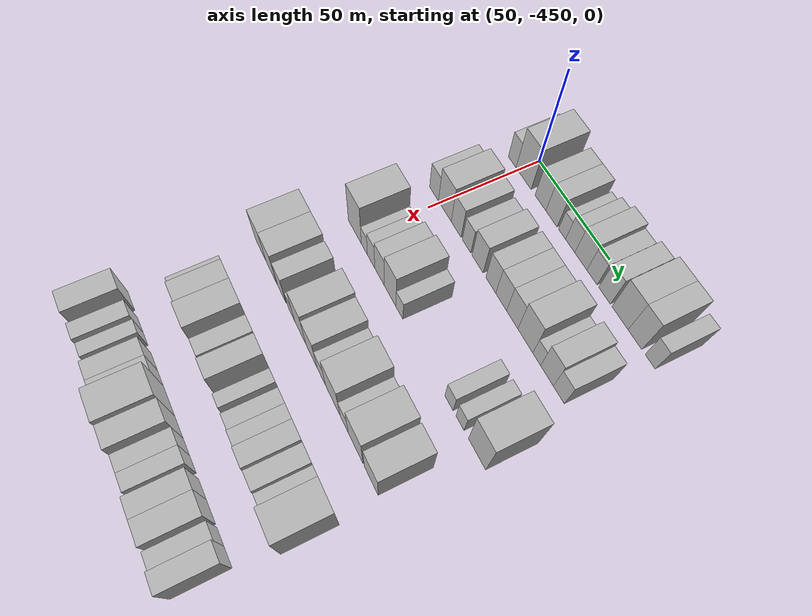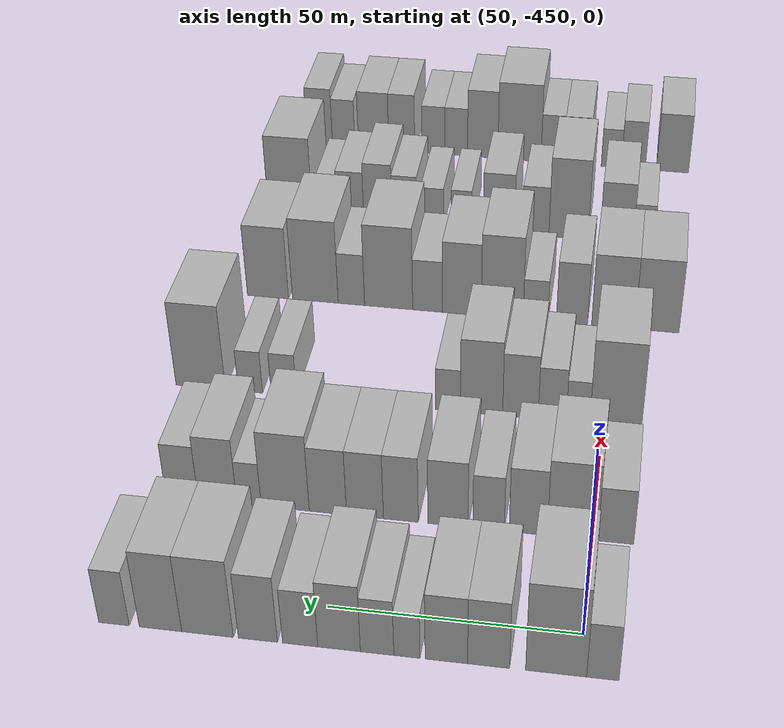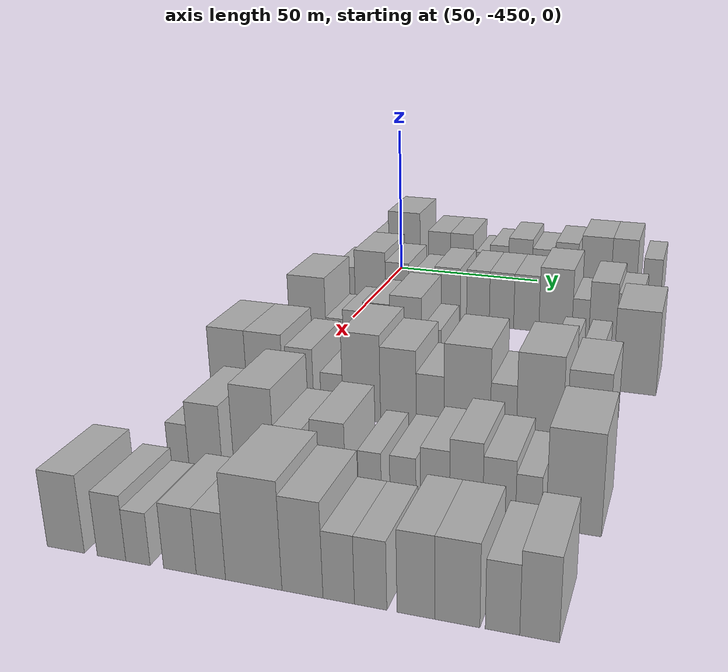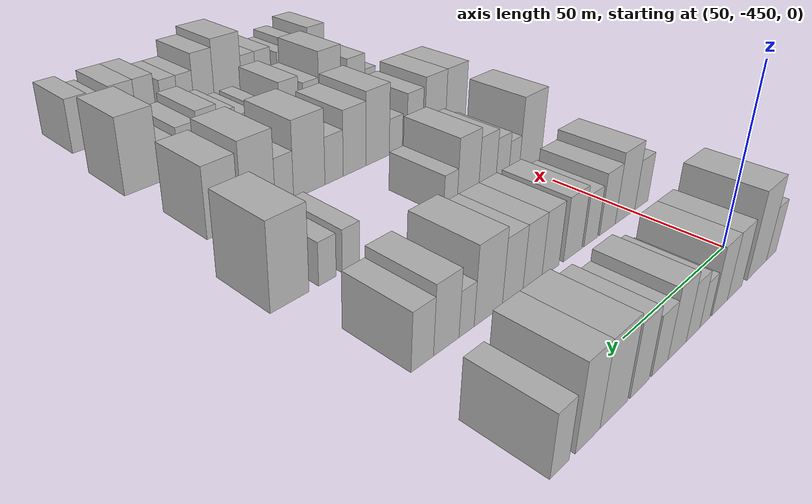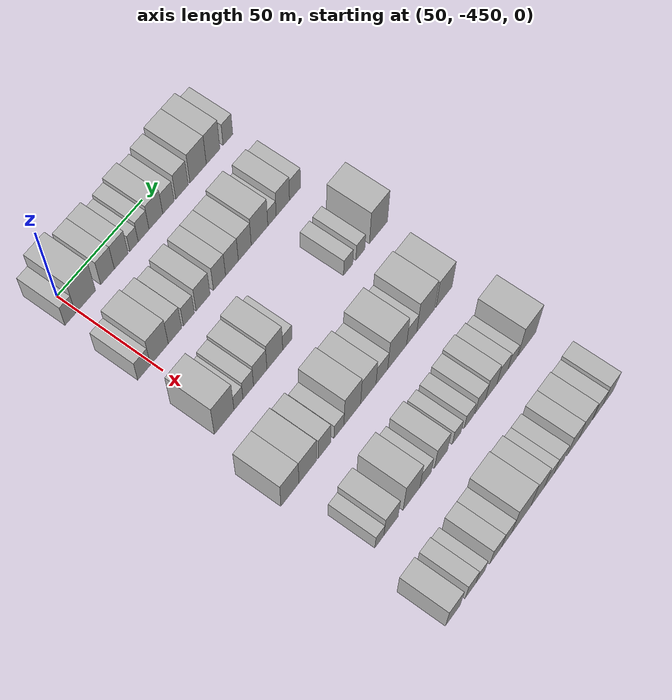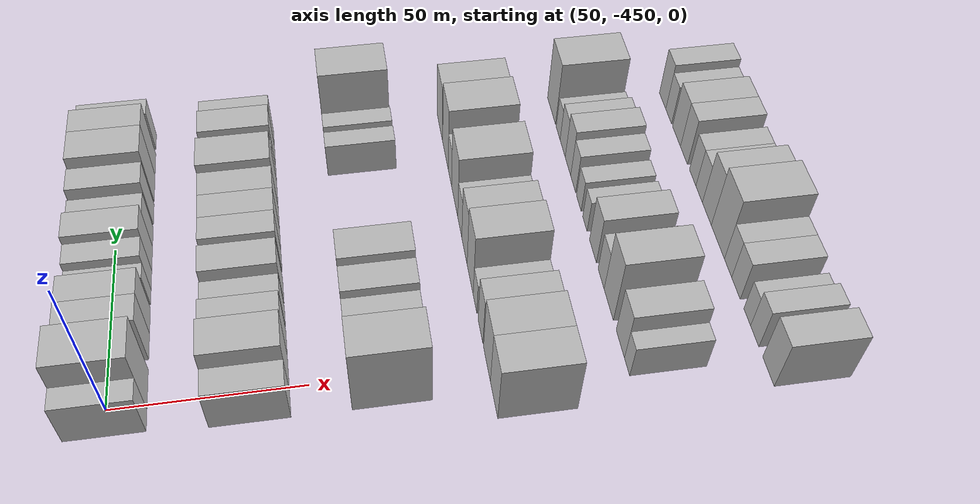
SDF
<sdf version="1.6">
 <world name="default">
  <model name="building_10">
   <static>1</static>
   <pose>50.0000 -454.3482 0 0.000000 0.000000 0.000000</pose>
   <link name="link">
    <pose>0 0 7.50 0 0 0</pose>
    <collision name="collision"><geometry><box><size>20.0000 6.0441 15.0000</size></box></geometry></collision>
    <visual name="visual">
     <cast_shadows>0</cast_shadows>
     <geometry><box><size>20.0000 6.0441 15.0000</size></box></geometry>
     <material>
      <script>
       <uri>model://HANNAS_wall/materials/scripts</uri>
       <uri>model://HANNAS_wall/materials/textures</uri>
       <name>vrc/HANNAS_wall</name>
      </script>
     </material>
    </visual>
   </link>
  </model>
  <model name="building_11">
   <static>1</static>
   <pose>50.0000 -445.5885 0 0.000000 0.000000 0.000000</pose>
   <link name="link">
    <pose>0 0 12.00 0 0 0</pose>
    <collision name="collision"><geometry><box><size>20.0000 11.4752 24.0000</size></box></geometry></collision>
    <visual name="visual">
     <cast_shadows>0</cast_shadows>
     <geometry><box><size>20.0000 11.4752 24.0000</size></box></geometry>
     <material>
      <script>
       <uri>model://HANNAS_wall/materials/scripts</uri>
       <uri>model://HANNAS_wall/materials/textures</uri>
       <name>vrc/HANNAS_wall</name>
      </script>
     </material>
    </visual>
   </link>
  </model>
  <model name="building_12">
   <static>1</static>
   <pose>50.0000 -432.8625 0 0.000000 0.000000 0.000000</pose>
   <link name="link">
    <pose>0 0 9.00 0 0 0</pose>
    <collision name="collision"><geometry><box><size>20.0000 7.9769 18.0000</size></box></geometry></collision>
    <visual name="visual">
     <cast_shadows>0</cast_shadows>
     <geometry><box><size>20.0000 7.9769 18.0000</size></box></geometry>
     <material>
      <script>
       <uri>model://HANNAS_wall/materials/scripts</uri>
       <uri>model://HANNAS_wall/materials/textures</uri>
       <name>vrc/HANNAS_wall</name>
      </script>
     </material>
    </visual>
   </link>
  </model>
  <model name="building_13">
   <static>1</static>
   <pose>50.0000 -424.8366 0 0.000000 0.000000 0.000000</pose>
   <link name="link">
    <pose>0 0 9.00 0 0 0</pose>
    <collision name="collision"><geometry><box><size>20.0000 8.0749 18.0000</size></box></geometry></collision>
    <visual name="visual">
     <cast_shadows>0</cast_shadows>
     <geometry><box><size>20.0000 8.0749 18.0000</size></box></geometry>
     <material>
      <script>
       <uri>model://HANNAS_wall/materials/scripts</uri>
       <uri>model://HANNAS_wall/materials/textures</uri>
       <name>vrc/HANNAS_wall</name>
      </script>
     </material>
    </visual>
   </link>
  </model>
  <model name="building_14">
   <static>1</static>
   <pose>50.0000 -417.2963 0 0.000000 0.000000 0.000000</pose>
   <link name="link">
    <pose>0 0 6.00 0 0 0</pose>
    <collision name="collision"><geometry><box><size>20.0000 5.0056 12.0000</size></box></geometry></collision>
    <visual name="visual">
     <cast_shadows>0</cast_shadows>
     <geometry><box><size>20.0000 5.0056 12.0000</size></box></geometry>
     <material>
      <script>
       <uri>model://HANNAS_wall/materials/scripts</uri>
       <uri>model://HANNAS_wall/materials/textures</uri>
       <name>vrc/HANNAS_wall</name>
      </script>
     </material>
    </visual>
   </link>
  </model>
  <model name="building_15">
   <static>1</static>
   <pose>50.0000 -411.5649 0 0.000000 0.000000 0.000000</pose>
   <link name="link">
    <pose>0 0 7.50 0 0 0</pose>
    <collision name="collision"><geometry><box><size>20.0000 6.4572 15.0000</size></box></geometry></collision>
    <visual name="visual">
     <cast_shadows>0</cast_shadows>
     <geometry><box><size>20.0000 6.4572 15.0000</size></box></geometry>
     <material>
      <script>
       <uri>model://HANNAS_wall/materials/scripts</uri>
       <uri>model://HANNAS_wall/materials/textures</uri>
       <name>vrc/HANNAS_wall</name>
      </script>
     </material>
    </visual>
   </link>
  </model>
  <model name="building_16">
   <static>1</static>
   <pose>50.0000 -404.2194 0 0.000000 0.000000 0.000000</pose>
   <link name="link">
    <pose>0 0 9.00 0 0 0</pose>
    <collision name="collision"><geometry><box><size>20.0000 8.2338 18.0000</size></box></geometry></collision>
    <visual name="visual">
     <cast_shadows>0</cast_shadows>
     <geometry><box><size>20.0000 8.2338 18.0000</size></box></geometry>
     <material>
      <script>
       <uri>model://HANNAS_wall/materials/scripts</uri>
       <uri>model://HANNAS_wall/materials/textures</uri>
       <name>vrc/HANNAS_wall</name>
      </script>
     </material>
    </visual>
   </link>
  </model>
  <model name="building_17">
   <static>1</static>
   <pose>50.0000 -396.6738 0 0.000000 0.000000 0.000000</pose>
   <link name="link">
    <pose>0 0 7.50 0 0 0</pose>
    <collision name="collision"><geometry><box><size>20.0000 6.8575 15.0000</size></box></geometry></collision>
    <visual name="visual">
     <cast_shadows>0</cast_shadows>
     <geometry><box><size>20.0000 6.8575 15.0000</size></box></geometry>
     <material>
      <script>
       <uri>model://HANNAS_wall/materials/scripts</uri>
       <uri>model://HANNAS_wall/materials/textures</uri>
       <name>vrc/HANNAS_wall</name>
      </script>
     </material>
    </visual>
   </link>
  </model>
  <model name="building_18">
   <static>1</static>
   <pose>50.0000 -388.4212 0 0.000000 0.000000 0.000000</pose>
   <link name="link">
    <pose>0 0 9.00 0 0 0</pose>
    <collision name="collision"><geometry><box><size>20.0000 7.6475 18.0000</size></box></geometry></collision>
    <visual name="visual">
     <cast_shadows>0</cast_shadows>
     <geometry><box><size>20.0000 7.6475 18.0000</size></box></geometry>
     <material>
      <script>
       <uri>model://HANNAS_wall/materials/scripts</uri>
       <uri>model://HANNAS_wall/materials/textures</uri>
       <name>vrc/HANNAS_wall</name>
      </script>
     </material>
    </visual>
   </link>
  </model>
  <model name="building_19">
   <static>1</static>
   <pose>50.0000 -378.5069 0 0.000000 0.000000 0.000000</pose>
   <link name="link">
    <pose>0 0 10.50 0 0 0</pose>
    <collision name="collision"><geometry><box><size>20.0000 10.1811 21.0000</size></box></geometry></collision>
    <visual name="visual">
     <cast_shadows>0</cast_shadows>
     <geometry><box><size>20.0000 10.1811 21.0000</size></box></geometry>
     <material>
      <script>
       <uri>model://HANNAS_wall/materials/scripts</uri>
       <uri>model://HANNAS_wall/materials/textures</uri>
       <name>vrc/HANNAS_wall</name>
      </script>
     </material>
    </visual>
   </link>
  </model>
  <model name="building_20">
   <static>1</static>
   <pose>50.0000 -369.2015 0 0.000000 0.000000 0.000000</pose>
   <link name="link">
    <pose>0 0 10.50 0 0 0</pose>
    <collision name="collision"><geometry><box><size>20.0000 8.4297 21.0000</size></box></geometry></collision>
    <visual name="visual">
     <cast_shadows>0</cast_shadows>
     <geometry><box><size>20.0000 8.4297 21.0000</size></box></geometry>
     <material>
      <script>
       <uri>model://HANNAS_wall/materials/scripts</uri>
       <uri>model://HANNAS_wall/materials/textures</uri>
       <name>vrc/HANNAS_wall</name>
      </script>
     </material>
    </visual>
   </link>
  </model>
  <model name="building_21">
   <static>1</static>
   <pose>50.0000 -359.9407 0 0.000000 0.000000 0.000000</pose>
   <link name="link">
    <pose>0 0 7.50 0 0 0</pose>
    <collision name="collision"><geometry><box><size>20.0000 6.0918 15.0000</size></box></geometry></collision>
    <visual name="visual">
     <cast_shadows>0</cast_shadows>
     <geometry><box><size>20.0000 6.0918 15.0000</size></box></geometry>
     <material>
      <script>
       <uri>model://HANNAS_wall/materials/scripts</uri>
       <uri>model://HANNAS_wall/materials/textures</uri>
       <name>vrc/HANNAS_wall</name>
      </script>
     </material>
    </visual>
   </link>
  </model>
  <model name="building_145">
   <static>1</static>
   <pose>85.0000 -454.7439 0 0.000000 0.000000 0.000000</pose>
   <link name="link">
    <pose>0 0 7.50 0 0 0</pose>
    <collision name="collision"><geometry><box><size>20.0000 7.3374 15.0000</size></box></geometry></collision>
    <visual name="visual">
     <cast_shadows>0</cast_shadows>
     <geometry><box><size>20.0000 7.3374 15.0000</size></box></geometry>
     <material>
      <script>
       <uri>model://HANNAS_wall/materials/scripts</uri>
       <uri>model://HANNAS_wall/materials/textures</uri>
       <name>vrc/HANNAS_wall</name>
      </script>
     </material>
    </visual>
   </link>
  </model>
  <model name="building_146">
   <static>1</static>
   <pose>85.0000 -445.8993 0 0.000000 0.000000 0.000000</pose>
   <link name="link">
    <pose>0 0 10.50 0 0 0</pose>
    <collision name="collision"><geometry><box><size>20.0000 10.3519 21.0000</size></box></geometry></collision>
    <visual name="visual">
     <cast_shadows>0</cast_shadows>
     <geometry><box><size>20.0000 10.3519 21.0000</size></box></geometry>
     <material>
      <script>
       <uri>model://HANNAS_wall/materials/scripts</uri>
       <uri>model://HANNAS_wall/materials/textures</uri>
       <name>vrc/HANNAS_wall</name>
      </script>
     </material>
    </visual>
   </link>
  </model>
  <model name="building_147">
   <static>1</static>
   <pose>85.0000 -436.8034 0 0.000000 0.000000 0.000000</pose>
   <link name="link">
    <pose>0 0 9.00 0 0 0</pose>
    <collision name="collision"><geometry><box><size>20.0000 7.8398 18.0000</size></box></geometry></collision>
    <visual name="visual">
     <cast_shadows>0</cast_shadows>
     <geometry><box><size>20.0000 7.8398 18.0000</size></box></geometry>
     <material>
      <script>
       <uri>model://HANNAS_wall/materials/scripts</uri>
       <uri>model://HANNAS_wall/materials/textures</uri>
       <name>vrc/HANNAS_wall</name>
      </script>
     </material>
    </visual>
   </link>
  </model>
  <model name="building_148">
   <static>1</static>
   <pose>85.0000 -428.6263 0 0.000000 0.000000 0.000000</pose>
   <link name="link">
    <pose>0 0 7.50 0 0 0</pose>
    <collision name="collision"><geometry><box><size>20.0000 6.5144 15.0000</size></box></geometry></collision>
    <visual name="visual">
     <cast_shadows>0</cast_shadows>
     <geometry><box><size>20.0000 6.5144 15.0000</size></box></geometry>
     <material>
      <script>
       <uri>model://HANNAS_wall/materials/scripts</uri>
       <uri>model://HANNAS_wall/materials/textures</uri>
       <name>vrc/HANNAS_wall</name>
      </script>
     </material>
    </visual>
   </link>
  </model>
  <model name="building_149">
   <static>1</static>
   <pose>85.0000 -420.1809 0 0.000000 0.000000 0.000000</pose>
   <link name="link">
    <pose>0 0 9.00 0 0 0</pose>
    <collision name="collision"><geometry><box><size>20.0000 8.3764 18.0000</size></box></geometry></collision>
    <visual name="visual">
     <cast_shadows>0</cast_shadows>
     <geometry><box><size>20.0000 8.3764 18.0000</size></box></geometry>
     <material>
      <script>
       <uri>model://HANNAS_wall/materials/scripts</uri>
       <uri>model://HANNAS_wall/materials/textures</uri>
       <name>vrc/HANNAS_wall</name>
      </script>
     </material>
    </visual>
   </link>
  </model>
  <model name="building_150">
   <static>1</static>
   <pose>85.0000 -410.3270 0 0.000000 0.000000 0.000000</pose>
   <link name="link">
    <pose>0 0 9.00 0 0 0</pose>
    <collision name="collision"><geometry><box><size>20.0000 7.3314 18.0000</size></box></geometry></collision>
    <visual name="visual">
     <cast_shadows>0</cast_shadows>
     <geometry><box><size>20.0000 7.3314 18.0000</size></box></geometry>
     <material>
      <script>
       <uri>model://HANNAS_wall/materials/scripts</uri>
       <uri>model://HANNAS_wall/materials/textures</uri>
       <name>vrc/HANNAS_wall</name>
      </script>
     </material>
    </visual>
   </link>
  </model>
  <model name="building_151">
   <static>1</static>
   <pose>85.0000 -402.7759 0 0.000000 0.000000 0.000000</pose>
   <link name="link">
    <pose>0 0 9.00 0 0 0</pose>
    <collision name="collision"><geometry><box><size>20.0000 7.7709 18.0000</size></box></geometry></collision>
    <visual name="visual">
     <cast_shadows>0</cast_shadows>
     <geometry><box><size>20.0000 7.7709 18.0000</size></box></geometry>
     <material>
      <script>
       <uri>model://HANNAS_wall/materials/scripts</uri>
       <uri>model://HANNAS_wall/materials/textures</uri>
       <name>vrc/HANNAS_wall</name>
      </script>
     </material>
    </visual>
   </link>
  </model>
  <model name="building_152">
   <static>1</static>
   <pose>85.0000 -394.9328 0 0.000000 0.000000 0.000000</pose>
   <link name="link">
    <pose>0 0 9.00 0 0 0</pose>
    <collision name="collision"><geometry><box><size>20.0000 7.9154 18.0000</size></box></geometry></collision>
    <visual name="visual">
     <cast_shadows>0</cast_shadows>
     <geometry><box><size>20.0000 7.9154 18.0000</size></box></geometry>
     <material>
      <script>
       <uri>model://HANNAS_wall/materials/scripts</uri>
       <uri>model://HANNAS_wall/materials/textures</uri>
       <name>vrc/HANNAS_wall</name>
      </script>
     </material>
    </visual>
   </link>
  </model>
  <model name="building_153">
   <static>1</static>
   <pose>85.0000 -385.8539 0 0.000000 0.000000 0.000000</pose>
   <link name="link">
    <pose>0 0 10.50 0 0 0</pose>
    <collision name="collision"><geometry><box><size>20.0000 10.2423 21.0000</size></box></geometry></collision>
    <visual name="visual">
     <cast_shadows>0</cast_shadows>
     <geometry><box><size>20.0000 10.2423 21.0000</size></box></geometry>
     <material>
      <script>
       <uri>model://HANNAS_wall/materials/scripts</uri>
       <uri>model://HANNAS_wall/materials/textures</uri>
       <name>vrc/HANNAS_wall</name>
      </script>
     </material>
    </visual>
   </link>
  </model>
  <model name="building_154">
   <static>1</static>
   <pose>85.0000 -378.1214 0 0.000000 0.000000 0.000000</pose>
   <link name="link">
    <pose>0 0 6.00 0 0 0</pose>
    <collision name="collision"><geometry><box><size>20.0000 5.2228 12.0000</size></box></geometry></collision>
    <visual name="visual">
     <cast_shadows>0</cast_shadows>
     <geometry><box><size>20.0000 5.2228 12.0000</size></box></geometry>
     <material>
      <script>
       <uri>model://HANNAS_wall/materials/scripts</uri>
       <uri>model://HANNAS_wall/materials/textures</uri>
       <name>vrc/HANNAS_wall</name>
      </script>
     </material>
    </visual>
   </link>
  </model>
  <model name="building_155">
   <static>1</static>
   <pose>85.0000 -371.3401 0 0.000000 0.000000 0.000000</pose>
   <link name="link">
    <pose>0 0 9.00 0 0 0</pose>
    <collision name="collision"><geometry><box><size>20.0000 8.3397 18.0000</size></box></geometry></collision>
    <visual name="visual">
     <cast_shadows>0</cast_shadows>
     <geometry><box><size>20.0000 8.3397 18.0000</size></box></geometry>
     <material>
      <script>
       <uri>model://HANNAS_wall/materials/scripts</uri>
       <uri>model://HANNAS_wall/materials/textures</uri>
       <name>vrc/HANNAS_wall</name>
      </script>
     </material>
    </visual>
   </link>
  </model>
  <model name="building_156">
   <static>1</static>
   <pose>85.0000 -363.6756 0 0.000000 0.000000 0.000000</pose>
   <link name="link">
    <pose>0 0 7.50 0 0 0</pose>
    <collision name="collision"><geometry><box><size>20.0000 6.9893 15.0000</size></box></geometry></collision>
    <visual name="visual">
     <cast_shadows>0</cast_shadows>
     <geometry><box><size>20.0000 6.9893 15.0000</size></box></geometry>
     <material>
      <script>
       <uri>model://HANNAS_wall/materials/scripts</uri>
       <uri>model://HANNAS_wall/materials/textures</uri>
       <name>vrc/HANNAS_wall</name>
      </script>
     </material>
    </visual>
   </link>
  </model>
  <model name="building_267">
   <static>1</static>
   <pose>120.0000 -452.7296 0 0.000000 0.000000 0.000000</pose>
   <link name="link">
    <pose>0 0 12.00 0 0 0</pose>
    <collision name="collision"><geometry><box><size>20.0000 11.4421 24.0000</size></box></geometry></collision>
    <visual name="visual">
     <cast_shadows>0</cast_shadows>
     <geometry><box><size>20.0000 11.4421 24.0000</size></box></geometry>
     <material>
      <script>
       <uri>model://HANNAS_wall/materials/scripts</uri>
       <uri>model://HANNAS_wall/materials/textures</uri>
       <name>vrc/HANNAS_wall</name>
      </script>
     </material>
    </visual>
   </link>
  </model>
  <model name="building_268">
   <static>1</static>
   <pose>120.0000 -444.3861 0 0.000000 0.000000 0.000000</pose>
   <link name="link">
    <pose>0 0 6.00 0 0 0</pose>
    <collision name="collision"><geometry><box><size>20.0000 5.2450 12.0000</size></box></geometry></collision>
    <visual name="visual">
     <cast_shadows>0</cast_shadows>
     <geometry><box><size>20.0000 5.2450 12.0000</size></box></geometry>
     <material>
      <script>
       <uri>model://HANNAS_wall/materials/scripts</uri>
       <uri>model://HANNAS_wall/materials/textures</uri>
       <name>vrc/HANNAS_wall</name>
      </script>
     </material>
    </visual>
   </link>
  </model>
  <model name="building_269">
   <static>1</static>
   <pose>120.0000 -438.6321 0 0.000000 0.000000 0.000000</pose>
   <link name="link">
    <pose>0 0 7.50 0 0 0</pose>
    <collision name="collision"><geometry><box><size>20.0000 6.2629 15.0000</size></box></geometry></collision>
    <visual name="visual">
     <cast_shadows>0</cast_shadows>
     <geometry><box><size>20.0000 6.2629 15.0000</size></box></geometry>
     <material>
      <script>
       <uri>model://HANNAS_wall/materials/scripts</uri>
       <uri>model://HANNAS_wall/materials/textures</uri>
       <name>vrc/HANNAS_wall</name>
      </script>
     </material>
    </visual>
   </link>
  </model>
  <model name="building_270">
   <static>1</static>
   <pose>120.0000 -431.5165 0 0.000000 0.000000 0.000000</pose>
   <link name="link">
    <pose>0 0 9.00 0 0 0</pose>
    <collision name="collision"><geometry><box><size>20.0000 7.9685 18.0000</size></box></geometry></collision>
    <visual name="visual">
     <cast_shadows>0</cast_shadows>
     <geometry><box><size>20.0000 7.9685 18.0000</size></box></geometry>
     <material>
      <script>
       <uri>model://HANNAS_wall/materials/scripts</uri>
       <uri>model://HANNAS_wall/materials/textures</uri>
       <name>vrc/HANNAS_wall</name>
      </script>
     </material>
    </visual>
   </link>
  </model>
  <model name="building_271">
   <static>1</static>
   <pose>120.0000 -422.7930 0 0.000000 0.000000 0.000000</pose>
   <link name="link">
    <pose>0 0 10.50 0 0 0</pose>
    <collision name="collision"><geometry><box><size>20.0000 9.4784 21.0000</size></box></geometry></collision>
    <visual name="visual">
     <cast_shadows>0</cast_shadows>
     <geometry><box><size>20.0000 9.4784 21.0000</size></box></geometry>
     <material>
      <script>
       <uri>model://HANNAS_wall/materials/scripts</uri>
       <uri>model://HANNAS_wall/materials/textures</uri>
       <name>vrc/HANNAS_wall</name>
      </script>
     </material>
    </visual>
   </link>
  </model>
  <model name="building_272">
   <static>1</static>
   <pose>120.0000 -415.2187 0 0.000000 0.000000 0.000000</pose>
   <link name="link">
    <pose>0 0 6.00 0 0 0</pose>
    <collision name="collision"><geometry><box><size>20.0000 5.6702 12.0000</size></box></geometry></collision>
    <visual name="visual">
     <cast_shadows>0</cast_shadows>
     <geometry><box><size>20.0000 5.6702 12.0000</size></box></geometry>
     <material>
      <script>
       <uri>model://HANNAS_wall/materials/scripts</uri>
       <uri>model://HANNAS_wall/materials/textures</uri>
       <name>vrc/HANNAS_wall</name>
      </script>
     </material>
    </visual>
   </link>
  </model>
  <model name="building_273">
   <static>1</static>
   <pose>120.0000 -377.6203 0 0.000000 0.000000 0.000000</pose>
   <link name="link">
    <pose>0 0 6.00 0 0 0</pose>
    <collision name="collision"><geometry><box><size>20.0000 5.8422 12.0000</size></box></geometry></collision>
    <visual name="visual">
     <cast_shadows>0</cast_shadows>
     <geometry><box><size>20.0000 5.8422 12.0000</size></box></geometry>
     <material>
      <script>
       <uri>model://HANNAS_wall/materials/scripts</uri>
       <uri>model://HANNAS_wall/materials/textures</uri>
       <name>vrc/HANNAS_wall</name>
      </script>
     </material>
    </visual>
   </link>
  </model>
  <model name="building_274">
   <static>1</static>
   <pose>120.0000 -369.8732 0 0.000000 0.000000 0.000000</pose>
   <link name="link">
    <pose>0 0 6.00 0 0 0</pose>
    <collision name="collision"><geometry><box><size>20.0000 5.6521 12.0000</size></box></geometry></collision>
    <visual name="visual">
     <cast_shadows>0</cast_shadows>
     <geometry><box><size>20.0000 5.6521 12.0000</size></box></geometry>
     <material>
      <script>
       <uri>model://HANNAS_wall/materials/scripts</uri>
       <uri>model://HANNAS_wall/materials/textures</uri>
       <name>vrc/HANNAS_wall</name>
      </script>
     </material>
    </visual>
   </link>
  </model>
  <model name="building_275">
   <static>1</static>
   <pose>120.0000 -358.2468 0 0.000000 0.000000 0.000000</pose>
   <link name="link">
    <pose>0 0 12.00 0 0 0</pose>
    <collision name="collision"><geometry><box><size>20.0000 11.6007 24.0000</size></box></geometry></collision>
    <visual name="visual">
     <cast_shadows>0</cast_shadows>
     <geometry><box><size>20.0000 11.6007 24.0000</size></box></geometry>
     <material>
      <script>
       <uri>model://HANNAS_wall/materials/scripts</uri>
       <uri>model://HANNAS_wall/materials/textures</uri>
       <name>vrc/HANNAS_wall</name>
      </script>
     </material>
    </visual>
   </link>
  </model>
  <model name="building_394">
   <static>1</static>
   <pose>155.0000 -460.5573 0 0.000000 0.000000 0.000000</pose>
   <link name="link">
    <pose>0 0 10.50 0 0 0</pose>
    <collision name="collision"><geometry><box><size>20.0000 10.4602 21.0000</size></box></geometry></collision>
    <visual name="visual">
     <cast_shadows>0</cast_shadows>
     <geometry><box><size>20.0000 10.4602 21.0000</size></box></geometry>
     <material>
      <script>
       <uri>model://HANNAS_wall/materials/scripts</uri>
       <uri>model://HANNAS_wall/materials/textures</uri>
       <name>vrc/HANNAS_wall</name>
      </script>
     </material>
    </visual>
   </link>
  </model>
  <model name="building_395">
   <static>1</static>
   <pose>155.0000 -450.1555 0 0.000000 0.000000 0.000000</pose>
   <link name="link">
    <pose>0 0 10.50 0 0 0</pose>
    <collision name="collision"><geometry><box><size>20.0000 10.3433 21.0000</size></box></geometry></collision>
    <visual name="visual">
     <cast_shadows>0</cast_shadows>
     <geometry><box><size>20.0000 10.3433 21.0000</size></box></geometry>
     <material>
      <script>
       <uri>model://HANNAS_wall/materials/scripts</uri>
       <uri>model://HANNAS_wall/materials/textures</uri>
       <name>vrc/HANNAS_wall</name>
      </script>
     </material>
    </visual>
   </link>
  </model>
  <model name="building_396">
   <static>1</static>
   <pose>155.0000 -440.2432 0 0.000000 0.000000 0.000000</pose>
   <link name="link">
    <pose>0 0 9.00 0 0 0</pose>
    <collision name="collision"><geometry><box><size>20.0000 7.4814 18.0000</size></box></geometry></collision>
    <visual name="visual">
     <cast_shadows>0</cast_shadows>
     <geometry><box><size>20.0000 7.4814 18.0000</size></box></geometry>
     <material>
      <script>
       <uri>model://HANNAS_wall/materials/scripts</uri>
       <uri>model://HANNAS_wall/materials/textures</uri>
       <name>vrc/HANNAS_wall</name>
      </script>
     </material>
    </visual>
   </link>
  </model>
  <model name="building_397">
   <static>1</static>
   <pose>155.0000 -431.5131 0 0.000000 0.000000 0.000000</pose>
   <link name="link">
    <pose>0 0 6.00 0 0 0</pose>
    <collision name="collision"><geometry><box><size>20.0000 5.9787 12.0000</size></box></geometry></collision>
    <visual name="visual">
     <cast_shadows>0</cast_shadows>
     <geometry><box><size>20.0000 5.9787 12.0000</size></box></geometry>
     <material>
      <script>
       <uri>model://HANNAS_wall/materials/scripts</uri>
       <uri>model://HANNAS_wall/materials/textures</uri>
       <name>vrc/HANNAS_wall</name>
      </script>
     </material>
    </visual>
   </link>
  </model>
  <model name="building_398">
   <static>1</static>
   <pose>155.0000 -423.4394 0 0.000000 0.000000 0.000000</pose>
   <link name="link">
    <pose>0 0 12.00 0 0 0</pose>
    <collision name="collision"><geometry><box><size>20.0000 10.1689 24.0000</size></box></geometry></collision>
    <visual name="visual">
     <cast_shadows>0</cast_shadows>
     <geometry><box><size>20.0000 10.1689 24.0000</size></box></geometry>
     <material>
      <script>
       <uri>model://HANNAS_wall/materials/scripts</uri>
       <uri>model://HANNAS_wall/materials/textures</uri>
       <name>vrc/HANNAS_wall</name>
      </script>
     </material>
    </visual>
   </link>
  </model>
  <model name="building_399">
   <static>1</static>
   <pose>155.0000 -413.6192 0 0.000000 0.000000 0.000000</pose>
   <link name="link">
    <pose>0 0 10.50 0 0 0</pose>
    <collision name="collision"><geometry><box><size>20.0000 9.4714 21.0000</size></box></geometry></collision>
    <visual name="visual">
     <cast_shadows>0</cast_shadows>
     <geometry><box><size>20.0000 9.4714 21.0000</size></box></geometry>
     <material>
      <script>
       <uri>model://HANNAS_wall/materials/scripts</uri>
       <uri>model://HANNAS_wall/materials/textures</uri>
       <name>vrc/HANNAS_wall</name>
      </script>
     </material>
    </visual>
   </link>
  </model>
  <model name="building_400">
   <static>1</static>
   <pose>155.0000 -405.2499 0 0.000000 0.000000 0.000000</pose>
   <link name="link">
    <pose>0 0 7.50 0 0 0</pose>
    <collision name="collision"><geometry><box><size>20.0000 7.2672 15.0000</size></box></geometry></collision>
    <visual name="visual">
     <cast_shadows>0</cast_shadows>
     <geometry><box><size>20.0000 7.2672 15.0000</size></box></geometry>
     <material>
      <script>
       <uri>model://HANNAS_wall/materials/scripts</uri>
       <uri>model://HANNAS_wall/materials/textures</uri>
       <name>vrc/HANNAS_wall</name>
      </script>
     </material>
    </visual>
   </link>
  </model>
  <model name="building_401">
   <static>1</static>
   <pose>155.0000 -395.7009 0 0.000000 0.000000 0.000000</pose>
   <link name="link">
    <pose>0 0 12.00 0 0 0</pose>
    <collision name="collision"><geometry><box><size>20.0000 11.8308 24.0000</size></box></geometry></collision>
    <visual name="visual">
     <cast_shadows>0</cast_shadows>
     <geometry><box><size>20.0000 11.8308 24.0000</size></box></geometry>
     <material>
      <script>
       <uri>model://HANNAS_wall/materials/scripts</uri>
       <uri>model://HANNAS_wall/materials/textures</uri>
       <name>vrc/HANNAS_wall</name>
      </script>
     </material>
    </visual>
   </link>
  </model>
  <model name="building_402">
   <static>1</static>
   <pose>155.0000 -386.5096 0 0.000000 0.000000 0.000000</pose>
   <link name="link">
    <pose>0 0 7.50 0 0 0</pose>
    <collision name="collision"><geometry><box><size>20.0000 6.5518 15.0000</size></box></geometry></collision>
    <visual name="visual">
     <cast_shadows>0</cast_shadows>
     <geometry><box><size>20.0000 6.5518 15.0000</size></box></geometry>
     <material>
      <script>
       <uri>model://HANNAS_wall/materials/scripts</uri>
       <uri>model://HANNAS_wall/materials/textures</uri>
       <name>vrc/HANNAS_wall</name>
      </script>
     </material>
    </visual>
   </link>
  </model>
  <model name="building_403">
   <static>1</static>
   <pose>155.0000 -377.5453 0 0.000000 0.000000 0.000000</pose>
   <link name="link">
    <pose>0 0 12.00 0 0 0</pose>
    <collision name="collision"><geometry><box><size>20.0000 11.3769 24.0000</size></box></geometry></collision>
    <visual name="visual">
     <cast_shadows>0</cast_shadows>
     <geometry><box><size>20.0000 11.3769 24.0000</size></box></geometry>
     <material>
      <script>
       <uri>model://HANNAS_wall/materials/scripts</uri>
       <uri>model://HANNAS_wall/materials/textures</uri>
       <name>vrc/HANNAS_wall</name>
      </script>
     </material>
    </visual>
   </link>
  </model>
  <model name="building_404">
   <static>1</static>
   <pose>155.0000 -365.7244 0 0.000000 0.000000 0.000000</pose>
   <link name="link">
    <pose>0 0 10.50 0 0 0</pose>
    <collision name="collision"><geometry><box><size>20.0000 10.2647 21.0000</size></box></geometry></collision>
    <visual name="visual">
     <cast_shadows>0</cast_shadows>
     <geometry><box><size>20.0000 10.2647 21.0000</size></box></geometry>
     <material>
      <script>
       <uri>model://HANNAS_wall/materials/scripts</uri>
       <uri>model://HANNAS_wall/materials/textures</uri>
       <name>vrc/HANNAS_wall</name>
      </script>
     </material>
    </visual>
   </link>
  </model>
  <model name="building_526">
   <static>1</static>
   <pose>190.0000 -455.8971 0 0.000000 0.000000 0.000000</pose>
   <link name="link">
    <pose>0 0 6.00 0 0 0</pose>
    <collision name="collision"><geometry><box><size>20.0000 5.2849 12.0000</size></box></geometry></collision>
    <visual name="visual">
     <cast_shadows>0</cast_shadows>
     <geometry><box><size>20.0000 5.2849 12.0000</size></box></geometry>
     <material>
      <script>
       <uri>model://HANNAS_wall/materials/scripts</uri>
       <uri>model://HANNAS_wall/materials/textures</uri>
       <name>vrc/HANNAS_wall</name>
      </script>
     </material>
    </visual>
   </link>
  </model>
  <model name="building_527">
   <static>1</static>
   <pose>190.0000 -448.9645 0 0.000000 0.000000 0.000000</pose>
   <link name="link">
    <pose>0 0 9.00 0 0 0</pose>
    <collision name="collision"><geometry><box><size>20.0000 8.5803 18.0000</size></box></geometry></collision>
    <visual name="visual">
     <cast_shadows>0</cast_shadows>
     <geometry><box><size>20.0000 8.5803 18.0000</size></box></geometry>
     <material>
      <script>
       <uri>model://HANNAS_wall/materials/scripts</uri>
       <uri>model://HANNAS_wall/materials/textures</uri>
       <name>vrc/HANNAS_wall</name>
      </script>
     </material>
    </visual>
   </link>
  </model>
  <model name="building_528">
   <static>1</static>
   <pose>190.0000 -436.5983 0 0.000000 0.000000 0.000000</pose>
   <link name="link">
    <pose>0 0 12.00 0 0 0</pose>
    <collision name="collision"><geometry><box><size>20.0000 10.1519 24.0000</size></box></geometry></collision>
    <visual name="visual">
     <cast_shadows>0</cast_shadows>
     <geometry><box><size>20.0000 10.1519 24.0000</size></box></geometry>
     <material>
      <script>
       <uri>model://HANNAS_wall/materials/scripts</uri>
       <uri>model://HANNAS_wall/materials/textures</uri>
       <name>vrc/HANNAS_wall</name>
      </script>
     </material>
    </visual>
   </link>
  </model>
  <model name="building_529">
   <static>1</static>
   <pose>190.0000 -428.0659 0 0.000000 0.000000 0.000000</pose>
   <link name="link">
    <pose>0 0 7.50 0 0 0</pose>
    <collision name="collision"><geometry><box><size>20.0000 6.9130 15.0000</size></box></geometry></collision>
    <visual name="visual">
     <cast_shadows>0</cast_shadows>
     <geometry><box><size>20.0000 6.9130 15.0000</size></box></geometry>
     <material>
      <script>
       <uri>model://HANNAS_wall/materials/scripts</uri>
       <uri>model://HANNAS_wall/materials/textures</uri>
       <name>vrc/HANNAS_wall</name>
      </script>
     </material>
    </visual>
   </link>
  </model>
  <model name="building_530">
   <static>1</static>
   <pose>190.0000 -418.5393 0 0.000000 0.000000 0.000000</pose>
   <link name="link">
    <pose>0 0 9.00 0 0 0</pose>
    <collision name="collision"><geometry><box><size>20.0000 8.1403 18.0000</size></box></geometry></collision>
    <visual name="visual">
     <cast_shadows>0</cast_shadows>
     <geometry><box><size>20.0000 8.1403 18.0000</size></box></geometry>
     <material>
      <script>
       <uri>model://HANNAS_wall/materials/scripts</uri>
       <uri>model://HANNAS_wall/materials/textures</uri>
       <name>vrc/HANNAS_wall</name>
      </script>
     </material>
    </visual>
   </link>
  </model>
  <model name="building_531">
   <static>1</static>
   <pose>190.0000 -408.7818 0 0.000000 0.000000 0.000000</pose>
   <link name="link">
    <pose>0 0 6.00 0 0 0</pose>
    <collision name="collision"><geometry><box><size>20.0000 5.3747 12.0000</size></box></geometry></collision>
    <visual name="visual">
     <cast_shadows>0</cast_shadows>
     <geometry><box><size>20.0000 5.3747 12.0000</size></box></geometry>
     <material>
      <script>
       <uri>model://HANNAS_wall/materials/scripts</uri>
       <uri>model://HANNAS_wall/materials/textures</uri>
       <name>vrc/HANNAS_wall</name>
      </script>
     </material>
    </visual>
   </link>
  </model>
  <model name="building_532">
   <static>1</static>
   <pose>190.0000 -401.1029 0 0.000000 0.000000 0.000000</pose>
   <link name="link">
    <pose>0 0 6.00 0 0 0</pose>
    <collision name="collision"><geometry><box><size>20.0000 5.9831 12.0000</size></box></geometry></collision>
    <visual name="visual">
     <cast_shadows>0</cast_shadows>
     <geometry><box><size>20.0000 5.9831 12.0000</size></box></geometry>
     <material>
      <script>
       <uri>model://HANNAS_wall/materials/scripts</uri>
       <uri>model://HANNAS_wall/materials/textures</uri>
       <name>vrc/HANNAS_wall</name>
      </script>
     </material>
    </visual>
   </link>
  </model>
  <model name="building_533">
   <static>1</static>
   <pose>190.0000 -393.8187 0 0.000000 0.000000 0.000000</pose>
   <link name="link">
    <pose>0 0 7.50 0 0 0</pose>
    <collision name="collision"><geometry><box><size>20.0000 6.5853 15.0000</size></box></geometry></collision>
    <visual name="visual">
     <cast_shadows>0</cast_shadows>
     <geometry><box><size>20.0000 6.5853 15.0000</size></box></geometry>
     <material>
      <script>
       <uri>model://HANNAS_wall/materials/scripts</uri>
       <uri>model://HANNAS_wall/materials/textures</uri>
       <name>vrc/HANNAS_wall</name>
      </script>
     </material>
    </visual>
   </link>
  </model>
  <model name="building_534">
   <static>1</static>
   <pose>190.0000 -386.8184 0 0.000000 0.000000 0.000000</pose>
   <link name="link">
    <pose>0 0 9.00 0 0 0</pose>
    <collision name="collision"><geometry><box><size>20.0000 7.4155 18.0000</size></box></geometry></collision>
    <visual name="visual">
     <cast_shadows>0</cast_shadows>
     <geometry><box><size>20.0000 7.4155 18.0000</size></box></geometry>
     <material>
      <script>
       <uri>model://HANNAS_wall/materials/scripts</uri>
       <uri>model://HANNAS_wall/materials/textures</uri>
       <name>vrc/HANNAS_wall</name>
      </script>
     </material>
    </visual>
   </link>
  </model>
  <model name="building_535">
   <static>1</static>
   <pose>190.0000 -379.5430 0 0.000000 0.000000 0.000000</pose>
   <link name="link">
    <pose>0 0 7.50 0 0 0</pose>
    <collision name="collision"><geometry><box><size>20.0000 7.1352 15.0000</size></box></geometry></collision>
    <visual name="visual">
     <cast_shadows>0</cast_shadows>
     <geometry><box><size>20.0000 7.1352 15.0000</size></box></geometry>
     <material>
      <script>
       <uri>model://HANNAS_wall/materials/scripts</uri>
       <uri>model://HANNAS_wall/materials/textures</uri>
       <name>vrc/HANNAS_wall</name>
      </script>
     </material>
    </visual>
   </link>
  </model>
  <model name="building_536">
   <static>1</static>
   <pose>190.0000 -373.1983 0 0.000000 0.000000 0.000000</pose>
   <link name="link">
    <pose>0 0 6.00 0 0 0</pose>
    <collision name="collision"><geometry><box><size>20.0000 5.5541 12.0000</size></box></geometry></collision>
    <visual name="visual">
     <cast_shadows>0</cast_shadows>
     <geometry><box><size>20.0000 5.5541 12.0000</size></box></geometry>
     <material>
      <script>
       <uri>model://HANNAS_wall/materials/scripts</uri>
       <uri>model://HANNAS_wall/materials/textures</uri>
       <name>vrc/HANNAS_wall</name>
      </script>
     </material>
    </visual>
   </link>
  </model>
  <model name="building_537">
   <static>1</static>
   <pose>190.0000 -363.5646 0 0.000000 0.000000 0.000000</pose>
   <link name="link">
    <pose>0 0 12.00 0 0 0</pose>
    <collision name="collision"><geometry><box><size>20.0000 11.7133 24.0000</size></box></geometry></collision>
    <visual name="visual">
     <cast_shadows>0</cast_shadows>
     <geometry><box><size>20.0000 11.7133 24.0000</size></box></geometry>
     <material>
      <script>
       <uri>model://HANNAS_wall/materials/scripts</uri>
       <uri>model://HANNAS_wall/materials/textures</uri>
       <name>vrc/HANNAS_wall</name>
      </script>
     </material>
    </visual>
   </link>
  </model>
  <model name="building_653">
   <static>1</static>
   <pose>225.0000 -462.1886 0 0.000000 0.000000 0.000000</pose>
   <link name="link">
    <pose>0 0 9.00 0 0 0</pose>
    <collision name="collision"><geometry><box><size>20.0000 8.7308 18.0000</size></box></geometry></collision>
    <visual name="visual">
     <cast_shadows>0</cast_shadows>
     <geometry><box><size>20.0000 8.7308 18.0000</size></box></geometry>
     <material>
      <script>
       <uri>model://HANNAS_wall/materials/scripts</uri>
       <uri>model://HANNAS_wall/materials/textures</uri>
       <name>vrc/HANNAS_wall</name>
      </script>
     </material>
    </visual>
   </link>
  </model>
  <model name="building_654">
   <static>1</static>
   <pose>225.0000 -451.5517 0 0.000000 0.000000 0.000000</pose>
   <link name="link">
    <pose>0 0 7.50 0 0 0</pose>
    <collision name="collision"><geometry><box><size>20.0000 6.5429 15.0000</size></box></geometry></collision>
    <visual name="visual">
     <cast_shadows>0</cast_shadows>
     <geometry><box><size>20.0000 6.5429 15.0000</size></box></geometry>
     <material>
      <script>
       <uri>model://HANNAS_wall/materials/scripts</uri>
       <uri>model://HANNAS_wall/materials/textures</uri>
       <name>vrc/HANNAS_wall</name>
      </script>
     </material>
    </visual>
   </link>
  </model>
  <model name="building_655">
   <static>1</static>
   <pose>225.0000 -445.5321 0 0.000000 0.000000 0.000000</pose>
   <link name="link">
    <pose>0 0 6.00 0 0 0</pose>
    <collision name="collision"><geometry><box><size>20.0000 5.4963 12.0000</size></box></geometry></collision>
    <visual name="visual">
     <cast_shadows>0</cast_shadows>
     <geometry><box><size>20.0000 5.4963 12.0000</size></box></geometry>
     <material>
      <script>
       <uri>model://HANNAS_wall/materials/scripts</uri>
       <uri>model://HANNAS_wall/materials/textures</uri>
       <name>vrc/HANNAS_wall</name>
      </script>
     </material>
    </visual>
   </link>
  </model>
  <model name="building_656">
   <static>1</static>
   <pose>225.0000 -436.1694 0 0.000000 0.000000 0.000000</pose>
   <link name="link">
    <pose>0 0 7.50 0 0 0</pose>
    <collision name="collision"><geometry><box><size>20.0000 7.2291 15.0000</size></box></geometry></collision>
    <visual name="visual">
     <cast_shadows>0</cast_shadows>
     <geometry><box><size>20.0000 7.2291 15.0000</size></box></geometry>
     <material>
      <script>
       <uri>model://HANNAS_wall/materials/scripts</uri>
       <uri>model://HANNAS_wall/materials/textures</uri>
       <name>vrc/HANNAS_wall</name>
      </script>
     </material>
    </visual>
   </link>
  </model>
  <model name="building_657">
   <static>1</static>
   <pose>225.0000 -429.3785 0 0.000000 0.000000 0.000000</pose>
   <link name="link">
    <pose>0 0 7.50 0 0 0</pose>
    <collision name="collision"><geometry><box><size>20.0000 6.3526 15.0000</size></box></geometry></collision>
    <visual name="visual">
     <cast_shadows>0</cast_shadows>
     <geometry><box><size>20.0000 6.3526 15.0000</size></box></geometry>
     <material>
      <script>
       <uri>model://HANNAS_wall/materials/scripts</uri>
       <uri>model://HANNAS_wall/materials/textures</uri>
       <name>vrc/HANNAS_wall</name>
      </script>
     </material>
    </visual>
   </link>
  </model>
  <model name="building_658">
   <static>1</static>
   <pose>225.0000 -420.2291 0 0.000000 0.000000 0.000000</pose>
   <link name="link">
    <pose>0 0 12.00 0 0 0</pose>
    <collision name="collision"><geometry><box><size>20.0000 11.9461 24.0000</size></box></geometry></collision>
    <visual name="visual">
     <cast_shadows>0</cast_shadows>
     <geometry><box><size>20.0000 11.9461 24.0000</size></box></geometry>
     <material>
      <script>
       <uri>model://HANNAS_wall/materials/scripts</uri>
       <uri>model://HANNAS_wall/materials/textures</uri>
       <name>vrc/HANNAS_wall</name>
      </script>
     </material>
    </visual>
   </link>
  </model>
  <model name="building_659">
   <static>1</static>
   <pose>225.0000 -410.0249 0 0.000000 0.000000 0.000000</pose>
   <link name="link">
    <pose>0 0 10.50 0 0 0</pose>
    <collision name="collision"><geometry><box><size>20.0000 8.4623 21.0000</size></box></geometry></collision>
    <visual name="visual">
     <cast_shadows>0</cast_shadows>
     <geometry><box><size>20.0000 8.4623 21.0000</size></box></geometry>
     <material>
      <script>
       <uri>model://HANNAS_wall/materials/scripts</uri>
       <uri>model://HANNAS_wall/materials/textures</uri>
       <name>vrc/HANNAS_wall</name>
      </script>
     </material>
    </visual>
   </link>
  </model>
  <model name="building_660">
   <static>1</static>
   <pose>225.0000 -402.6126 0 0.000000 0.000000 0.000000</pose>
   <link name="link">
    <pose>0 0 7.50 0 0 0</pose>
    <collision name="collision"><geometry><box><size>20.0000 6.3624 15.0000</size></box></geometry></collision>
    <visual name="visual">
     <cast_shadows>0</cast_shadows>
     <geometry><box><size>20.0000 6.3624 15.0000</size></box></geometry>
     <material>
      <script>
       <uri>model://HANNAS_wall/materials/scripts</uri>
       <uri>model://HANNAS_wall/materials/textures</uri>
       <name>vrc/HANNAS_wall</name>
      </script>
     </material>
    </visual>
   </link>
  </model>
  <model name="building_661">
   <static>1</static>
   <pose>225.0000 -396.2161 0 0.000000 0.000000 0.000000</pose>
   <link name="link">
    <pose>0 0 7.50 0 0 0</pose>
    <collision name="collision"><geometry><box><size>20.0000 6.4306 15.0000</size></box></geometry></collision>
    <visual name="visual">
     <cast_shadows>0</cast_shadows>
     <geometry><box><size>20.0000 6.4306 15.0000</size></box></geometry>
     <material>
      <script>
       <uri>model://HANNAS_wall/materials/scripts</uri>
       <uri>model://HANNAS_wall/materials/textures</uri>
       <name>vrc/HANNAS_wall</name>
      </script>
     </material>
    </visual>
   </link>
  </model>
  <model name="building_662">
   <static>1</static>
   <pose>225.0000 -387.3409 0 0.000000 0.000000 0.000000</pose>
   <link name="link">
    <pose>0 0 9.00 0 0 0</pose>
    <collision name="collision"><geometry><box><size>20.0000 7.3197 18.0000</size></box></geometry></collision>
    <visual name="visual">
     <cast_shadows>0</cast_shadows>
     <geometry><box><size>20.0000 7.3197 18.0000</size></box></geometry>
     <material>
      <script>
       <uri>model://HANNAS_wall/materials/scripts</uri>
       <uri>model://HANNAS_wall/materials/textures</uri>
       <name>vrc/HANNAS_wall</name>
      </script>
     </material>
    </visual>
   </link>
  </model>
  <model name="building_663">
   <static>1</static>
   <pose>225.0000 -379.3992 0 0.000000 0.000000 0.000000</pose>
   <link name="link">
    <pose>0 0 9.00 0 0 0</pose>
    <collision name="collision"><geometry><box><size>20.0000 8.5637 18.0000</size></box></geometry></collision>
    <visual name="visual">
     <cast_shadows>0</cast_shadows>
     <geometry><box><size>20.0000 8.5637 18.0000</size></box></geometry>
     <material>
      <script>
       <uri>model://HANNAS_wall/materials/scripts</uri>
       <uri>model://HANNAS_wall/materials/textures</uri>
       <name>vrc/HANNAS_wall</name>
      </script>
     </material>
    </visual>
   </link>
  </model>
  <model name="building_664">
   <static>1</static>
   <pose>225.0000 -370.9256 0 0.000000 0.000000 0.000000</pose>
   <link name="link">
    <pose>0 0 7.50 0 0 0</pose>
    <collision name="collision"><geometry><box><size>20.0000 6.3836 15.0000</size></box></geometry></collision>
    <visual name="visual">
     <cast_shadows>0</cast_shadows>
     <geometry><box><size>20.0000 6.3836 15.0000</size></box></geometry>
     <material>
      <script>
       <uri>model://HANNAS_wall/materials/scripts</uri>
       <uri>model://HANNAS_wall/materials/textures</uri>
       <name>vrc/HANNAS_wall</name>
      </script>
     </material>
    </visual>
   </link>
  </model>
  <model name="building_665">
   <static>1</static>
   <pose>225.0000 -364.1183 0 0.000000 0.000000 0.000000</pose>
   <link name="link">
    <pose>0 0 9.00 0 0 0</pose>
    <collision name="collision"><geometry><box><size>20.0000 7.2311 18.0000</size></box></geometry></collision>
    <visual name="visual">
     <cast_shadows>0</cast_shadows>
     <geometry><box><size>20.0000 7.2311 18.0000</size></box></geometry>
     <material>
      <script>
       <uri>model://HANNAS_wall/materials/scripts</uri>
       <uri>model://HANNAS_wall/materials/textures</uri>
       <name>vrc/HANNAS_wall</name>
      </script>
     </material>
    </visual>
   </link>
  </model>
 </world>
</sdf>
